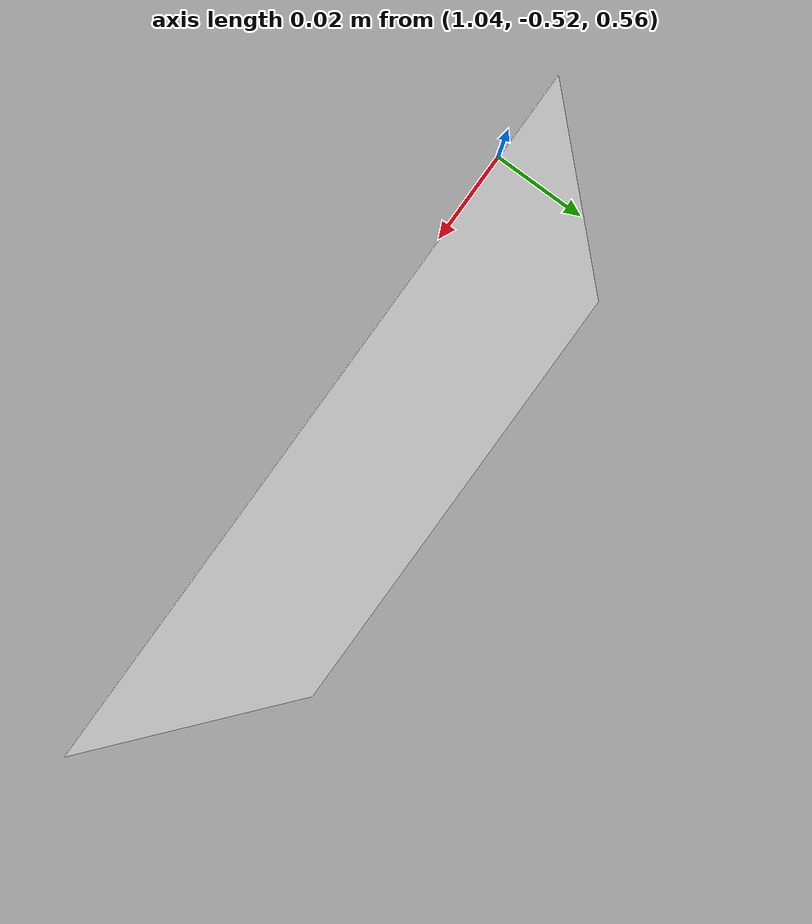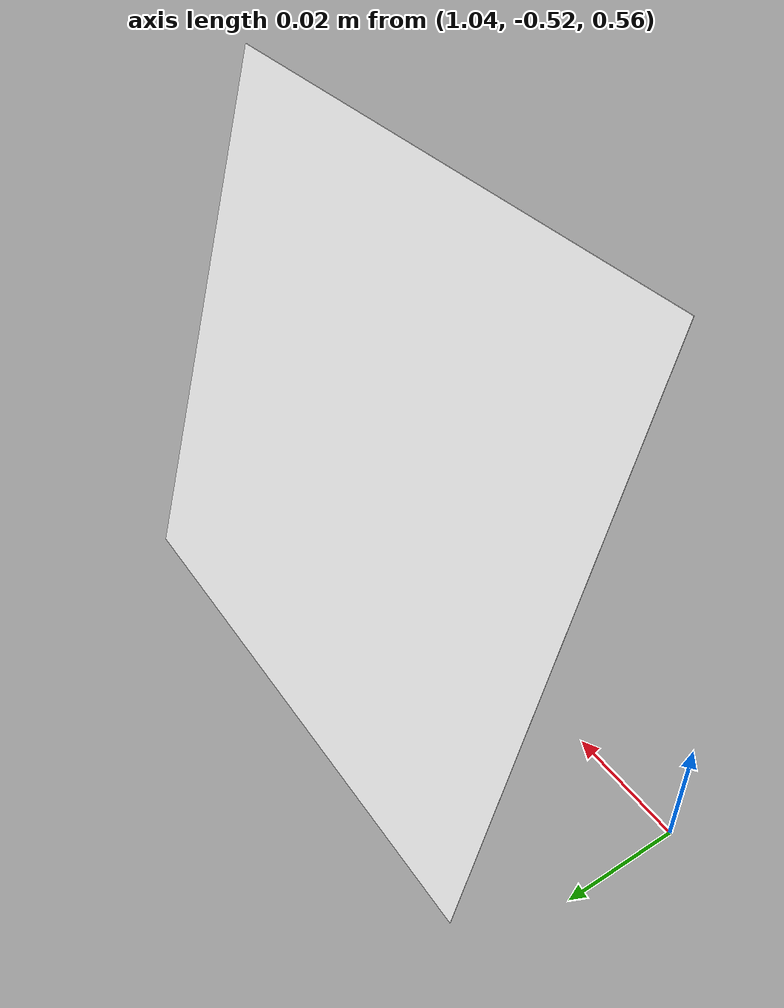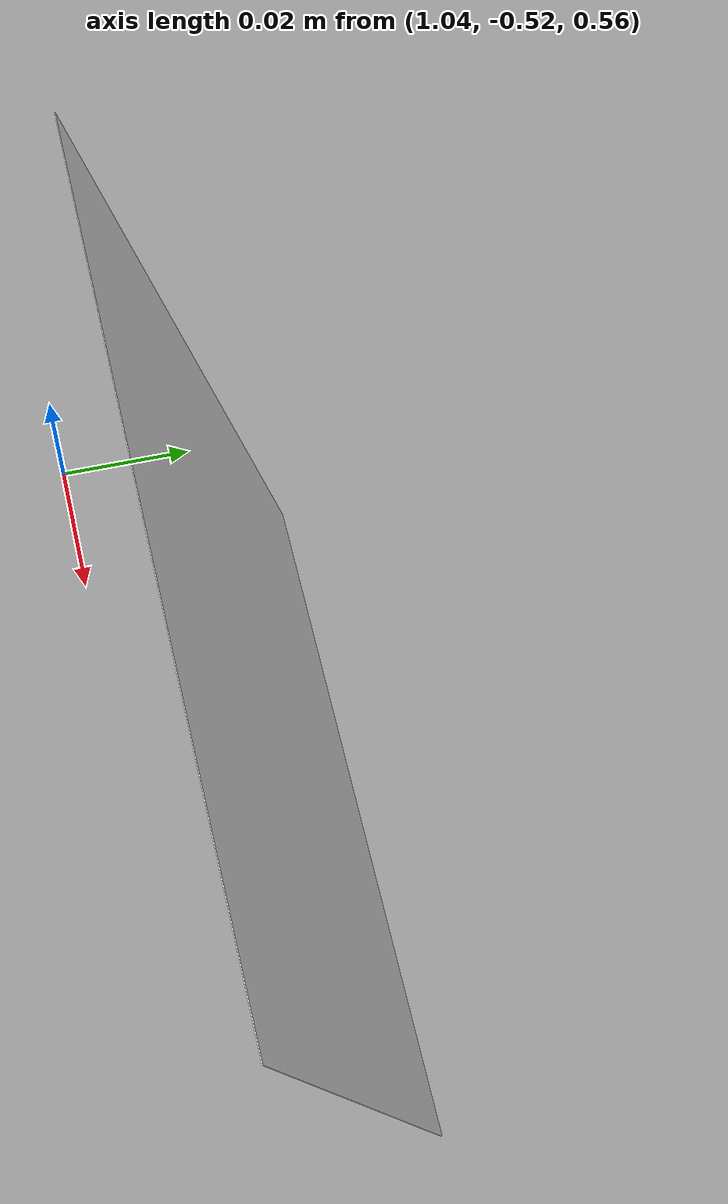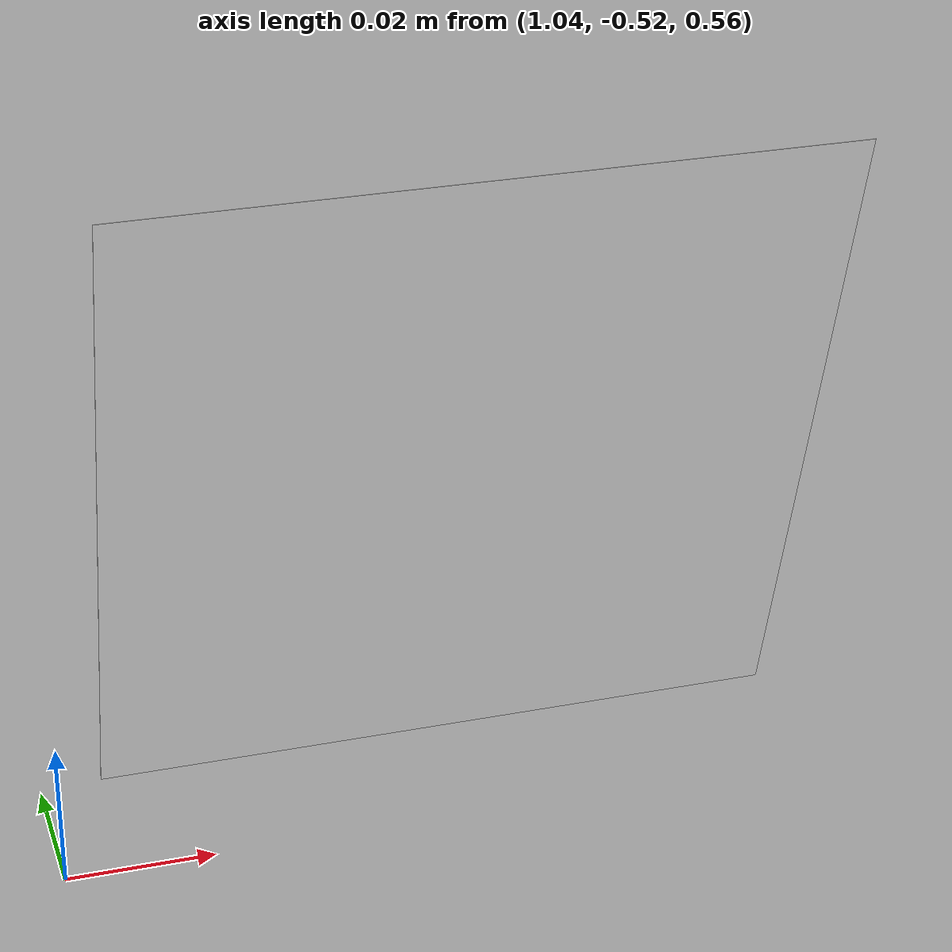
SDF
<?xml version="1.0" ?>
<sdf version="1.4">
  <!-- We use a custom world for the rrbot so that the camera angle is launched correctly -->

  <world name="default">
    <!-- Included light -->
    <include>
      <uri>https://fuel.gazebosim.org/1.0/OpenRobotics/models/Sun</uri>
    </include>

    <!-- Included model -->
    <include>
      <uri>https://fuel.gazebosim.org/1.0/OpenRobotics/models/Ground Plane</uri>
    </include>

    <include>
      <uri>
        model://arucotag
      </uri>
      <name>arucotag</name>
      <pose>1.1 -0.5 0.6 -1.3 0 0</pose>
    </include>

    <gravity>0 0 0</gravity>

    <!-- World control -->

  </world>
</sdf>

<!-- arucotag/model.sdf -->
<sdf version='1.9'>
  <model name='arucotag'>
    <static>true</static>
    <pose>1.1 -0.5 0.6 -1.3 0 0</pose>
    <link name='base'>
      <visual name='base_visual'>
        <geometry>
          <plane>
            <normal>0 0 1</normal>
            <size>0.1 0.1</size>
          </plane>
        </geometry>
        <material>
          <diffuse>1 1 1 1</diffuse>
          <specular>0.4 0.4 0.4 1</specular>
          <pbr>
            <metal>
              <albedo_map>model://arucotag/aruco-201.png</albedo_map>
            </metal>
          </pbr>
        </material>
      </visual>
    </link>
  </model>
</sdf>
